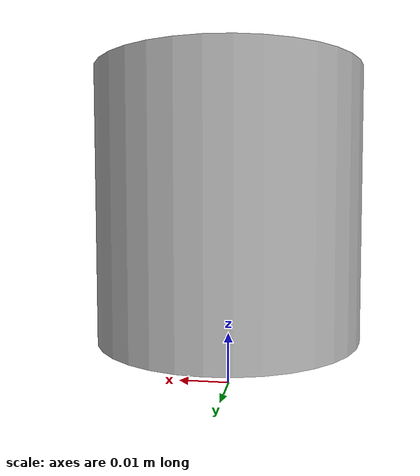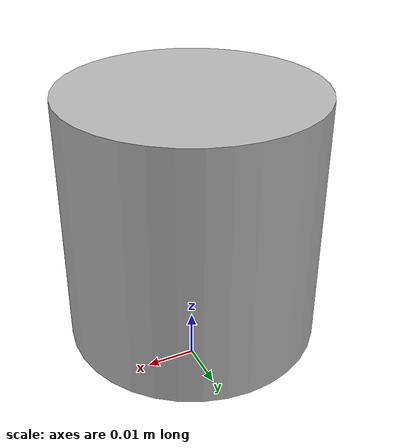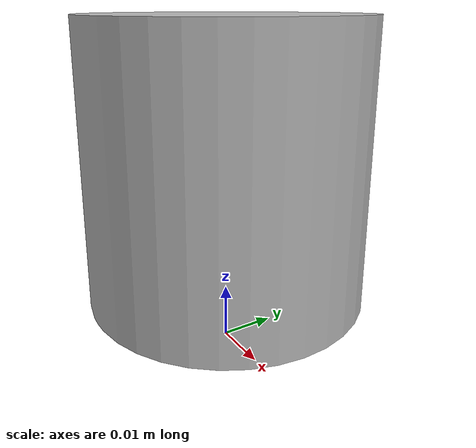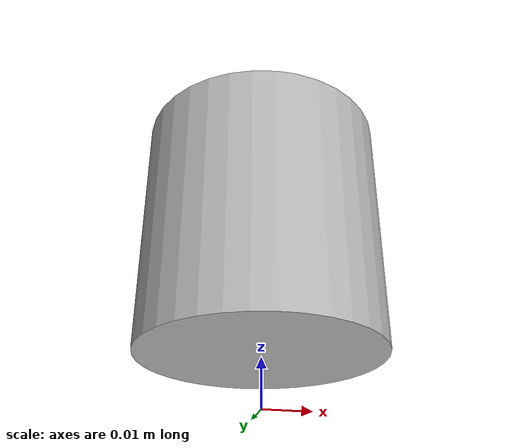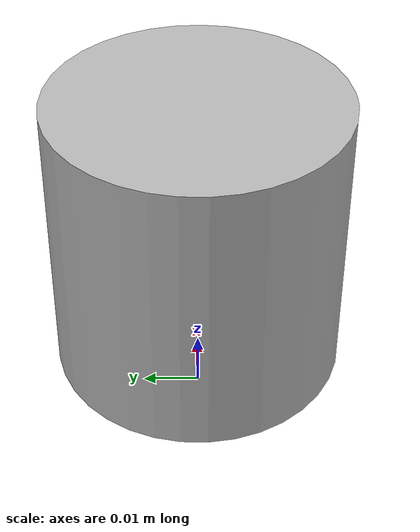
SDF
<sdf version='1.6'>
  <model name='cylinder_l'>
    <link name='object'>
      <pose frame=''>0 0 0.01 1.5708 0 0</pose>
      <inertial>
        <pose frame=''>0 0.03 0 0 0 0</pose>
        <mass>0.0098175</mass>
        <inertia>
          <ixx>3.57929e-05</ixx>
          <ixy>-7.26037e-54</ixy>
          <ixz>1.18575e-37</ixz>
          <iyy>3.57929e-05</iyy>
          <iyz>-3.13087e-22</iyz>
          <izz>3.06796e-05</izz>
        </inertia>
      </inertial>
      <collision name='object_collision'>
        <pose frame=''>0 0 0 0 0 0</pose>
        <geometry>
          <mesh>
            <scale>1 1 1</scale>
            <uri>model://cylinder_l/untitled.dae</uri>
          </mesh>
        </geometry>
        <surface>
          <friction>
            <ode>
              <mu>5.0</mu>
              <mu2>1.0</mu2>
            </ode>
          </friction>
          <contact>
            <ode>
              <kp>1000000.0</kp>
              <kd>1.0</kd>
              <min_depth>0.0000001</min_depth>
              <max_vel>0.1</max_vel>
            </ode>
          </contact>
        </surface>
      </collision>
      <visual name='object_visual'>
        <pose frame=''>0 0 0 0 0 0</pose>
        <geometry>
          <mesh>
            <scale>1 1 1</scale>
            <uri>model://cylinder_l/untitled.dae</uri>
          </mesh>
        </geometry>
      </visual>
    </link>
  </model>
</sdf>
